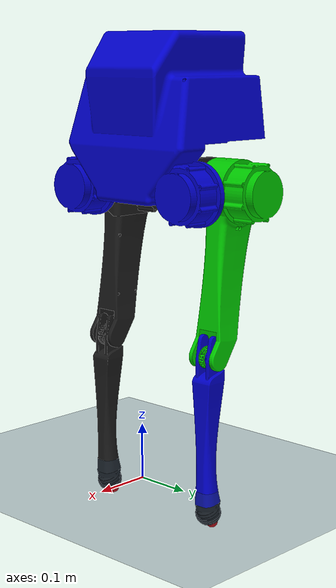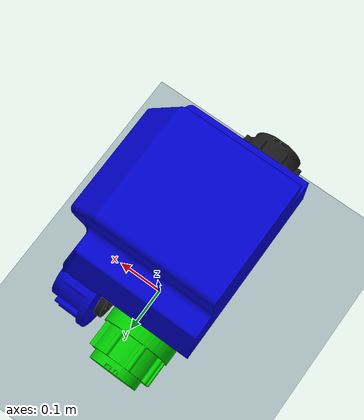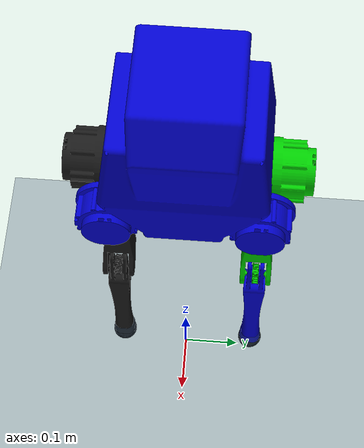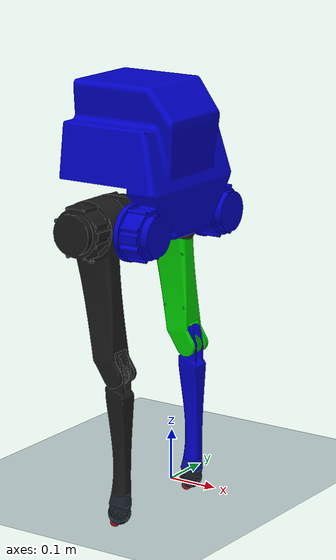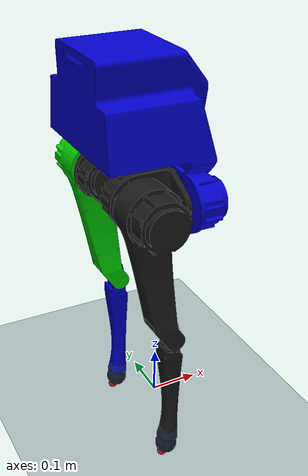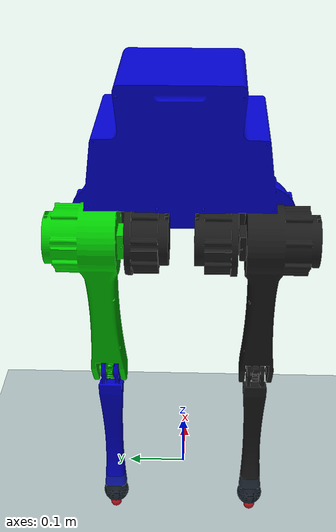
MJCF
<mujoco model="scene">
  <include file="bipedal.xml"/>

  <statistic center="0 0 0" extent="1.5"/>

  <visual>
    <headlight diffuse="0.6 0.6 0.6" ambient="0.1 0.1 0.1" specular="0 0 0"/>
    <rgba haze="0.15 0.25 0.35 1"/>
    <global azimuth="120" elevation="-20"/>
  </visual>

  <asset>
    <texture type="skybox" builtin="gradient" rgb1="0.3 0.5 0.7" rgb2="0 0 0" width="512" height="3072"/>
    <texture type="2d" name="groundplane" builtin="checker" mark="edge" rgb1="0.2 0.3 0.4" rgb2="0.1 0.2 0.3"
      markrgb="0.8 0.8 0.8" width="300" height="300"/>
    <material name="groundplane" texture="groundplane" texuniform="true" texrepeat="5 5"/>
  </asset>

  <worldbody>
    <light pos="0 0 1.5" dir="0 0 -1" directional="true"/>
    <!-- Ground plane at z=0 (infinite). contype/conaffinity=1 so the feet collide with it. -->
    <geom name="floor" type="plane" size="0 0 0.05" material="groundplane"
          contype="1" conaffinity="1"/>
  </worldbody>
</mujoco>

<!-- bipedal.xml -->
<mujoco model="bipedal_robot">
  <compiler angle="radian" meshdir="../meshes/final_stl"/>

  <option integrator="implicitfast"/>

  <default>
    <geom contype="0" conaffinity="0"/>
  </default>

  <asset>
    <mesh name="body_v3_urdf" content_type="model/stl" file="body_v3_urdf.STL" scale="0.001 0.001 0.001"/>
    <mesh name="hip" content_type="model/stl" file="hip.STL" scale="0.001 0.001 0.001"/>
    <mesh name="femur_L_FINAL" content_type="model/stl" file="femur_L_FINAL.STL" scale="0.001 0.001 0.001"/>
    <mesh name="tibia_final" content_type="model/stl" file="tibia_final.STL" scale="0.001 0.001 0.001"/>
    <mesh name="foot_v4" content_type="model/stl" file="foot_v4.STL" scale="0.001 0.001 0.001"/>
    <mesh name="femur_R_FINAL" content_type="model/stl" file="femur_R_FINAL.STL" scale="0.001 0.001 0.001"/>
  </asset>

  <worldbody>
    <body name="base" pos="0 0 0.498">

      <freejoint name="base_free"/>

      <inertial pos="-0.00011 0.11488 -0.04551" mass="7.13137"
                fullinertia="0.081061 0.106576 0.129409 0.000089 -0.000051 -0.022384"/>
      <geom pos="0 0 0" quat="0.499998 0.5 0.500002 0.5" type="mesh" rgba="0 0 0.8 1" mesh="body_v3_urdf"/>
    <body name="left_hip_connector_link" pos="-0.0125004 0.125 0.02088" quat="-3.89602e-06 -1.29867e-06 0.707107 0.707107">
      <inertial pos="0.06026 0.02088 -0.08217" quat="0.980491 0.00014315 -0.196565 0.000271321" mass="1.02839" diaginertia="0.00155031 0.001299 0.000962692"/>
      <joint name="left_hip_yaw" pos="0 0 0" axis="1 0 0" range="-1.57 0.5" actuatorfrcrange="-60 60" damping="0.1" frictionloss="0.01"/>
      <geom type="mesh" rgba="0.1 0.1 0.1 1" mesh="hip"/>
      <body name="left_femur_link" pos="0.074 0 0" quat="0.499998 0.5 -0.500002 -0.5">
        <inertial pos="0.16258 -0.0111 -0.08518" quat="0.298127 0.439729 -0.581363 0.616259" mass="1.45045" diaginertia="0.0100726 0.00963238 0.00200906"/>
        <joint name="left_hip_pitch" pos="0 0 0" axis="0 1 0" range="-0.18 2" actuatorfrcrange="-60 60" damping="0.1" frictionloss="0.01"/>
        <geom type="mesh" rgba="0 0.8 0 1" mesh="femur_L_FINAL"/>
        <body name="left_tibia_link" pos="0.28154 0 0.05165" quat="1.32679e-06 1 0 0">
          <inertial pos="0.132073 -0.372053 -0.0565048" quat="0.732657 0.672872 -0.0779594 0.0661738" mass="0.32337" diaginertia="0.00273931 0.0026494 0.000153024"/>
          <joint name="left_knee" pos="0 0 0" axis="0 1 0" range="0 2.57" actuatorfrcrange="-60 60" damping="0.1" frictionloss="0.01"/>
          <geom type="mesh" rgba="0 0 0.8 1" mesh="tibia_final"/>

          <!-- Change contype and conaffinity to 1 for contacts -->
          <geom pos="0.29957 0 0.01196" quat="0.601126 -0.601128 0.372352 0.372353" type="mesh" rgba="0.1 0.1 0.1 1" mesh="foot_v4" contype="1" conaffinity="1"/>

          <!-- Contact point for RobotModel footPose/footJacobian (co-located with the foot geom). -->
          <site name="left_foot" pos="0.29957 0 0.01196" quat="0.601126 -0.601128 0.372352 0.372353" size="0.01" rgba="1 0 0 1"/>
        </body>
      </body>
    </body>
    <body name="right_hip_connector_link" pos="-0.0124995 -0.125 0.02088" quat="1.29867e-06 -3.89602e-06 0.707108 -0.707106">
      <inertial pos="-0.06026 0.02088 -0.08217" quat="0.980491 -0.00014315 0.196565 0.000271321" mass="1.02839" diaginertia="0.00155031 0.001299 0.000962692"/>
      <joint name="right_hip_yaw" pos="0 0 0" axis="1 0 0" range="-0.5 1.57" actuatorfrcrange="-60 60" damping="0.1" frictionloss="0.01"/>
      <geom type="mesh" rgba="0.1 0.1 0.1 1" mesh="hip"/>
      <body name="right_femur_link" pos="0.074 0 0" quat="0.499998 0.5 0.500002 0.5">
        <inertial pos="-0.16258 -0.01114 -0.08464" quat="0.613533 0.575317 -0.446136 0.305858" mass="1.45045" diaginertia="0.0100537 0.00963936 0.00200893"/>
        <joint name="right_hip_pitch" pos="0 0 0" axis="0 1 0" range="-2 0.18" actuatorfrcrange="-60 60" damping="0.1" frictionloss="0.01"/>
        <geom type="mesh" rgba="0.1 0.1 0.1 1" mesh="femur_R_FINAL"/>
        <body name="right_tibia_link" pos="0.28154 0 -0.05165">
          <inertial pos="-0.128927 -0.372027 -0.0565094" quat="0.732716 0.672819 -0.0779088 0.0661203" mass="0.32337" diaginertia="0.00274153 0.00265157 0.000153075"/>
          <joint name="right_knee" pos="0 0 0" axis="0 1 0" range="0 2.57" actuatorfrcrange="-60 60" damping="0.1" frictionloss="0.01"/>
          <geom type="mesh" rgba="0.1 0.1 0.1 1" mesh="tibia_final"/>

          <geom pos="0.29977 0 0.01196" quat="0.601126 -0.601128 0.372352 0.372353" type="mesh" rgba="0.1 0.1 0.1 1" mesh="foot_v4" contype="1" conaffinity="1"/>

          <!-- Contact point for RobotModel footPose/footJacobian (co-located with the foot geom). -->
          <site name="right_foot" pos="0.29977 0 0.01196" quat="0.601126 -0.601128 0.372352 0.372353" size="0.01" rgba="1 0 0 1"/>
        </body>
      </body>
    </body>
    </body>
  </worldbody>

   <equality>
    <weld body1="right_tibia_link"/>
  </equality>

  <!-- Position (servo) actuators: MuJoCo holds each joint at the commanded angle.
       The plugin treats POSITION actuators as position control. ctrl = target angle. -->

  <actuator>
    <motor name="left_hip_yaw"    joint="left_hip_yaw"    ctrlrange="-60 60" gear="1"/>
    <motor name="left_hip_pitch"  joint="left_hip_pitch"  ctrlrange="-60 60" gear="1"/>
    <motor name="left_knee"       joint="left_knee"       ctrlrange="-60 60" gear="1"/>
    <motor name="right_hip_yaw"   joint="right_hip_yaw"   ctrlrange="-60 60" gear="1"/>
    <motor name="right_hip_pitch" joint="right_hip_pitch" ctrlrange="-60 60" gear="1"/>
    <motor name="right_knee"      joint="right_knee"      ctrlrange="-60 60" gear="1"/>
  </actuator>

</mujoco>
